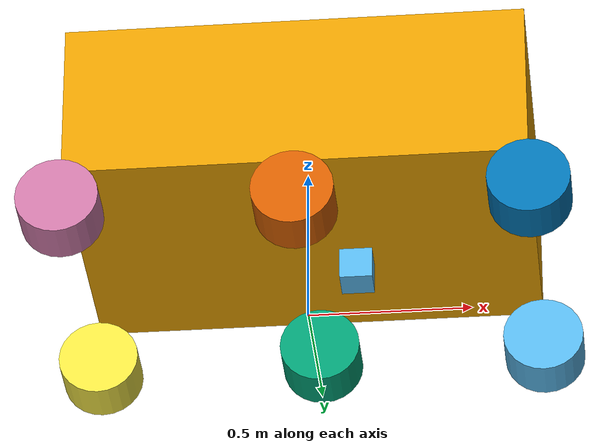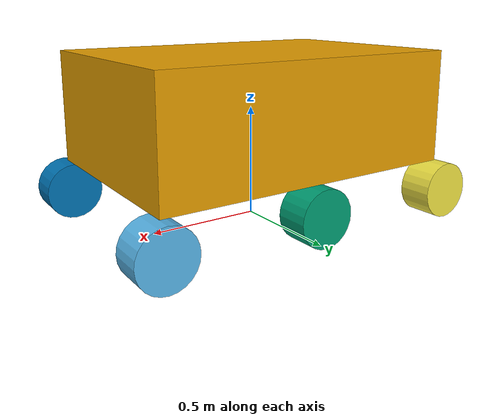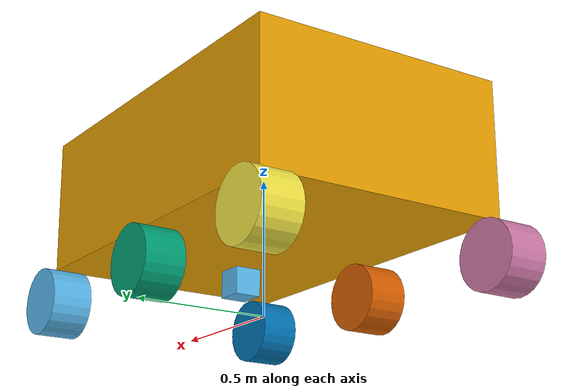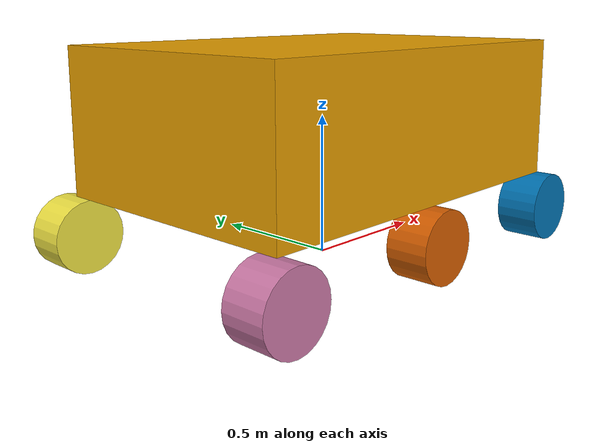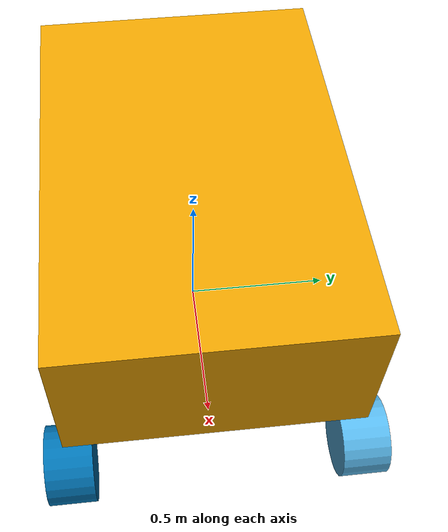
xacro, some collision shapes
<?xml version='1.0'?>

<robot name="myrobot" xmlns:xacro="http://www.ros.org/wiki/xacro">

  <xacro:include filename="$(find mybot_description)/urdf/mybot.gazebo" />
  <xacro:include filename="$(find mybot_description)/urdf/materials.xacro" />
  <xacro:include filename="$(find mybot_description)/urdf/macros.xacro" />

  <link name='chassis'>
    <pose>0 0 0 0 0 0</pose>

    <inertial>
      <mass value="47.0"/>
      <origin xyz="0.0 0.0 0.0" rpy=" 0 0 0"/>
      <inertia
          ixx="1" ixy="0" ixz="0"
          iyy="1" iyz="0"
          izz="1"
      />
    </inertial>

    <collision name='collision'>
      <geometry>
        <box size="1.4 0.96 0.505"/>
      </geometry>
    </collision>

    <visual name='chassis_visual'>
      <origin xyz="0 0 0.505" rpy=" 0 0 0"/>
      <geometry>
        <box size="1.4 .96 .505"/>
      </geometry>
    </visual>
  </link>

  <link name="left_wheel_1">
    <!--origin xyz="0.1 0.13 0.1" rpy="0 1.5707 1.5707"/-->
    <collision name="collision">
      <origin xyz="0.0 0.0 0.0" rpy="0 1.5707 1.5707"/>
      <geometry>
        <cylinder radius="0.125" length="0.150"/>
      </geometry>
    </collision>
    <visual name="left_wheel_visual">
      <origin xyz="0.0 0.0 0.0" rpy="0 1.5707 1.5707"/>
      <geometry>
        <cylinder radius="0.125" length="0.150"/>
      </geometry>
    </visual>
    <inertial>
      <origin xyz="0.0 0.0 0.0" rpy="0 1.5707 1.5707"/>
      <mass value="4"/>
      <inertia
        ixx="1" ixy="0.0" ixz="0.0"
        iyy="1" iyz="0.0"
        izz="1"/>
    </inertial>
  </link>

  <link name="left_wheel_2">
    <!--origin xyz="0.1 0.13 0.1" rpy="0 1.5707 1.5707"/-->
    <collision name="collision">
      <origin xyz=" 0 0 0" rpy="0 1.5707 1.5707"/>
      <geometry>
        <cylinder radius="0.125" length="0.150"/>
      </geometry>
    </collision>
    <visual name="left_wheel_visual">
      <origin xyz="0 0 0" rpy="0 1.5707 1.5707"/>
      <geometry>
        <cylinder radius="0.125" length="0.150"/>
      </geometry>
    </visual>
    <inertial>
      <origin xyz="0 0 0" rpy="0 1.5707 1.5707"/>
      <mass value="4"/>
      <inertia
        ixx="1" ixy="0.0" ixz="0.0"
        iyy="1" iyz="0.0"
        izz="1"/>
    </inertial>
  </link>

  <link name="left_wheel_3">
    <!--origin xyz="0.1 0.13 0.1" rpy="0 1.5707 1.5707"/-->
    <collision name="collision">
      <origin xyz="0 0 0" rpy="0 1.5707 1.5707"/>
      <geometry>
        <cylinder radius="0.125" length="0.150"/>
      </geometry>
    </collision>
    <visual name="left_wheel_visual">
      <origin xyz="0 0 0" rpy="0 1.5707 1.5707"/>
      <geometry>
        <cylinder radius="0.125" length="0.150"/>
      </geometry>
    </visual>
    <inertial>
      <origin xyz="0 0 0" rpy="0 1.5707 1.5707"/>
      <mass value="4"/>
      <inertia
        ixx="1" ixy="0.0" ixz="0.0"
        iyy="1" iyz="0.0"
        izz="1"/>
    </inertial>
  </link>

  <link name="right_wheel_1">
    <!--origin xyz="0.1 -0.13 0.1" rpy="0 1.5707 1.5707"/-->
    <collision name="collision">
      <origin xyz="0 0 0" rpy="0 1.5707 1.5707"/>
      <geometry>
        <cylinder radius="0.125" length="0.150"/>
      </geometry>
    </collision>
    <visual name="right_wheel_visual">
      <origin xyz="0 0 0" rpy="0 1.5707 1.5707"/>
      <geometry>
        <cylinder radius="0.125" length="0.150"/>
      </geometry>
    </visual>
    <inertial>
      <origin xyz="0 0 0" rpy="0 1.5707 1.5707"/>
      <mass value="4"/>
      <inertia
        ixx="1" ixy="0.0" ixz="0.0"
        iyy="1" iyz="0.0"
        izz="1"/>
    </inertial>
  </link>

  <link name="right_wheel_2">
    <!--origin xyz="0.1 -0.13 0.1" rpy="0 1.5707 1.5707"/-->
    <collision name="collision">
      <origin xyz="0 0 0" rpy="0 1.5707 1.5707"/>
      <geometry>
        <cylinder radius="0.125" length="0.150"/>
      </geometry>
    </collision>
    <visual name="right_wheel_visual">
      <origin xyz="0 0 0" rpy="0 1.5707 1.5707"/>
      <geometry>
        <cylinder radius="0.125" length="0.150"/>
      </geometry>
    </visual>
    <inertial>
      <origin xyz="0 0 0" rpy="0 1.5707 1.5707"/>
      <mass value="4"/>
      <inertia
        ixx="1" ixy="0.0" ixz="0.0"
        iyy="1" iyz="0.0"
        izz="1"/>
    </inertial>
  </link>

  <link name="right_wheel_3">
    <!--origin xyz="0.1 -0.13 0.1" rpy="0 1.5707 1.5707"/-->
    <collision name="collision">
      <origin xyz="0 0 0" rpy="0 1.5707 1.5707"/>
      <geometry>
        <cylinder radius="0.125" length="0.150"/>
      </geometry>
    </collision>
    <visual name="right_wheel_visual">
      <origin xyz="0 0 0" rpy="0 1.5707 1.5707"/>
      <geometry>
        <cylinder radius="0.125" length="0.150"/>
      </geometry>
    </visual>
    <inertial>
      <origin xyz="0 0 0" rpy="0 1.5707 1.5707"/>
      <mass value="4"/>
      <inertia
        ixx="1" ixy="0.0" ixz="0.0"
        iyy="1" iyz="0.0"
        izz="1"/>
    </inertial>
  </link>

  <link name="imu_link">
   <inertial>
    <mass value="0.001"/>
    <origin rpy="0 0 0" xyz="0 0 0"/>
    <inertia ixx="0.0001" ixy="0" ixz="0" iyy="0.000001" iyz="0" izz="0.0001"/>
   </inertial>
   <visual>
    <origin rpy="0 0 0" xyz="0 0 0"/>
    <geometry>
      <box size="0.01 0.01 0.01"/>
    </geometry>
    <material name="red"/>
   </visual>
   <collision>
    <origin rpy="0 0 0" xyz="0 0 0"/>
    <geometry>
      <box size=".01 .01 .01"/>
    </geometry>
   </collision>
  </link>

  <link name="gps_link">
   <inertial>
    <mass value="0.001"/>
    <origin rpy="0 0 0" xyz="0 0 0"/>
    <inertia ixx="0.0001" ixy="0" ixz="0" iyy="0.000001" iyz="0" izz="0.0001"/>
   </inertial>
   <visual>
    <origin rpy="0 0 0" xyz="0 0 0"/>
    <geometry>
      <box size="0.01 0.01 0.01"/>
    </geometry>
    <material name="red"/>
   </visual>
   <collision>
    <origin rpy="0 0 0" xyz="0 0 0"/>
    <geometry>
      <box size=".01 .01 .01"/>
    </geometry>
   </collision>
  </link>

  <joint type="continuous" name="left_wheel_1_hinge">
    <origin xyz="0.70 0.465 0.125" rpy="0 0 0"/>
    <!--origin xyz="0.1 0.13 0" rpy="0 1.5707 1.5707"/-->
    <child link="left_wheel_1"/>
    <parent link="chassis"/>
    <axis xyz="0 1 0" rpy="0 0 0"/>
    <limit effort="10000" velocity="1000"/>
    <joint_properties damping="1.0" friction="1.0"/>
  </joint>

  <joint type="continuous" name="left_wheel_2_hinge">
    <origin xyz=" 0 0.465 0.125" rpy="0 0 0"/>
    <!--origin xyz="0.1 0.13 0" rpy="0 1.5707 1.5707"/-->
    <child link="left_wheel_2"/>
    <parent link="chassis"/>
    <axis xyz="0 1 0" rpy="0 0 0"/>
    <limit effort="10000" velocity="1000"/>
    <joint_properties damping="1.0" friction="1.0"/>
  </joint>

  <joint type="continuous" name="left_wheel_3_hinge">
    <origin xyz="-0.70 .48 0.125" rpy="0 0 0"/>
    <!--origin xyz="0.1 0.13 0" rpy="0 1.5707 1.5707"/-->
    <child link="left_wheel_3"/>
    <parent link="chassis"/>
    <axis xyz="0 1 0" rpy="0 0 0"/>
    <limit effort="10000" velocity="1000"/>
    <joint_properties damping="1.0" friction="1.0"/>
  </joint>

  <joint type="continuous" name="right_wheel_1_hinge">
    <origin xyz="0.70 -0.465 0.125" rpy="0 0 0"/>
    <!--origin xyz="0.1 -0.13 0" rpy="0 1.5707 1.5707"/-->
    <child link="right_wheel_1"/>
    <parent link="chassis"/>
    <axis xyz="0 1 0" rpy="0 0 0"/>
    <limit effort="10000" velocity="1000"/>
    <joint_properties damping="1.0" friction="1.0"/>
  </joint>

  <joint type="continuous" name="right_wheel_2_hinge">
    <origin xyz="0 -0.465 0.125" rpy="0 0 0"/>
    <!--origin xyz="0.1 -0.13 0" rpy="0 1.5707 1.5707"/-->
    <child link="right_wheel_2"/>
    <parent link="chassis"/>
    <axis xyz="0 1 0" rpy="0 0 0"/>
    <limit effort="10000" velocity="1000"/>
    <joint_properties damping="1.0" friction="1.0"/>
  </joint>

  <joint type="continuous" name="right_wheel_3_hinge">
    <origin xyz="-0.70 -0.48 0.125" rpy="0 0 0"/>
    <!--origin xyz="0.1 -0.13 0" rpy="0 1.5707 1.5707"/-->
    <child link="right_wheel_3"/>
    <parent link="chassis"/>
    <axis xyz="0 1 0" rpy="0 0 0"/>
    <limit effort="10000" velocity="1000"/>
    <joint_properties damping="1.0" friction="1.0"/>
  </joint>

  <joint name="imu_joint" type="fixed">
    <axis xyz="0 0 1"/>
    <origin xyz="0 0 0.3"/>
    <parent link="chassis"/>
    <child link="imu_link"/>
  </joint>

  <joint name="gps_joint" type="fixed">
    <axis xyz="0 0 1"/>
    <origin xyz="0 0 0.3"/>
    <parent link="chassis"/>
    <child link="gps_link"/>
  </joint>

  <link name="laser_link">
    <collision>
      <origin xyz="0 0 0" rpy="0 0 0"/>
      <geometry>
    <box size="0.1 0.1 0.1"/>
      </geometry>
    </collision>

    <visual>
      <origin xyz="0 0 0" rpy="0 0 0"/>
      <geometry>
        <mesh filename="package://mybot_description/meshes/hokuyo.dae"/>
      </geometry>
    </visual>

    <inertial>
      <mass value="1e-5" />
      <origin xyz="0 0 0" rpy="0 0 0"/>
      <inertia ixx="1e-6" ixy="0" ixz="0" iyy="1e-6" iyz="0" izz="1e-6" />
    </inertial>
  </link>

  <joint name="laser_joint" type="continuous">
    <axis xyz="0 1 0" />
    <origin xyz=".15 0 0.15" rpy="0 0 0"/>
    <parent link="chassis"/>
    <child link="laser_link"/>
  </joint>

</robot>
